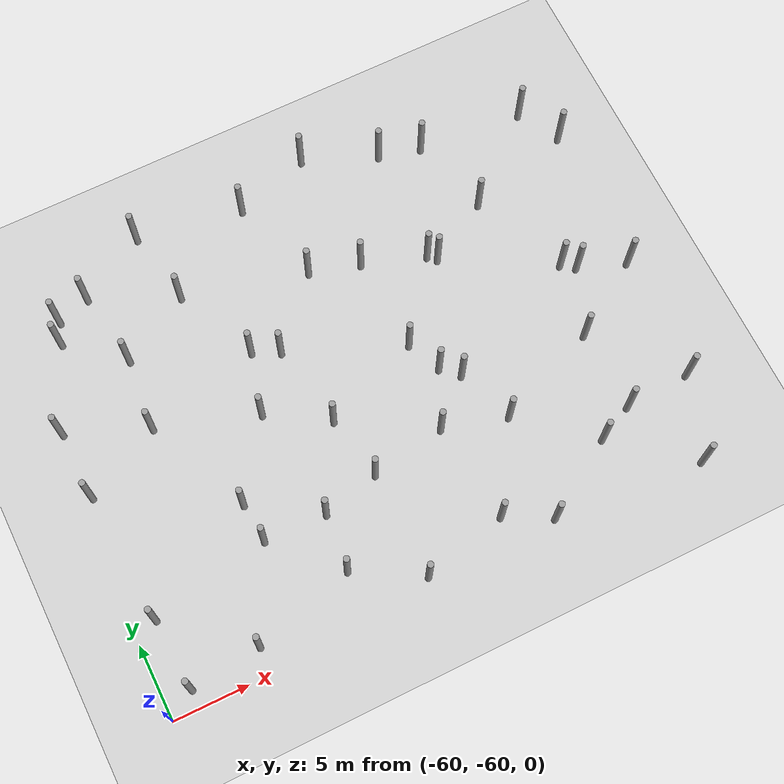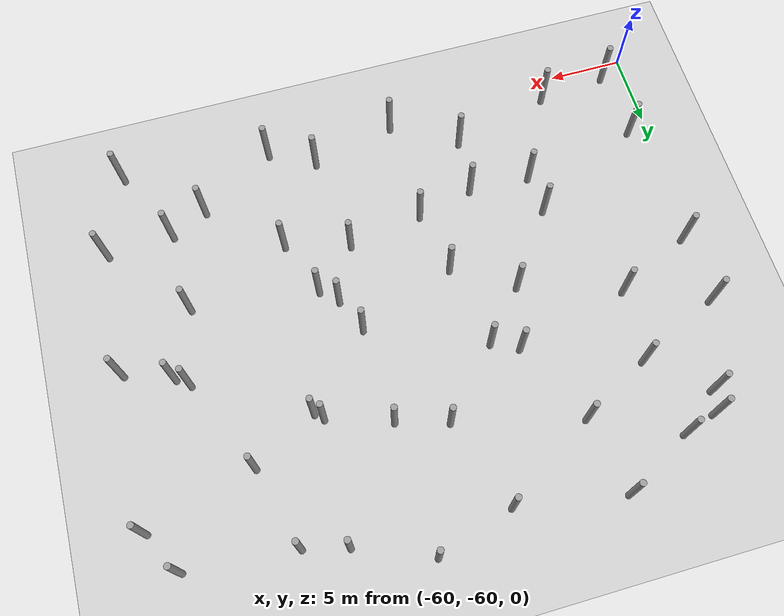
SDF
<sdf version="1.6">
 <world name="default">
  <model name="ground_plane">
   <static>1</static>
   <link name="link">
    <collision name="collision">
     <geometry><plane><normal>0 0 1</normal><size>200 200</size></plane></geometry>
     <surface><friction><ode><mu>100</mu><mu2>50</mu2></ode></friction></surface>
    </collision>
    <visual name="visual">
     <cast_shadows>0</cast_shadows>
     <geometry><plane><normal>0 0 1</normal><size>200 200</size></plane></geometry>
     <material>
      <script><uri>file://media/materials/scripts/gazebo.material</uri><name>Gazebo/Grey</name></script>
     </material>
    </visual>
   </link>
   <pose>0 100 0 0 0 0</pose>
  </model>
  <include>
   <name>tree_-58.2274148097_-58.8383424693</name>
   <uri>model://tree</uri>
   <pose>-58.2274148097 -58.8383424693 2 0 0 0</pose>
  </include>
  <include>
   <name>tree_-58.4916522315_-54.0885505528</name>
   <uri>model://tree</uri>
   <pose>-58.4916522315 -54.0885505528 2 0 0 0</pose>
  </include>
  <include>
   <name>tree_-58.9903051866_-45.344155304</name>
   <uri>model://tree</uri>
   <pose>-58.9903051866 -45.344155304 2 0 0 0</pose>
  </include>
  <include>
   <name>tree_-59.0742666468_-40.730722932</name>
   <uri>model://tree</uri>
   <pose>-59.0742666468 -40.730722932 2 0 0 0</pose>
  </include>
  <include>
   <name>tree_-56.8344243115_-35.0828755712</name>
   <uri>model://tree</uri>
   <pose>-56.8344243115 -35.0828755712 2 0 0 0</pose>
  </include>
  <include>
   <name>tree_-56.3498334585_-33.6391085534</name>
   <uri>model://tree</uri>
   <pose>-56.3498334585 -33.6391085534 2 0 0 0</pose>
  </include>
  <include>
   <name>tree_-53.5228804513_-58.3246953583</name>
   <uri>model://tree</uri>
   <pose>-53.5228804513 -58.3246953583 2 0 0 0</pose>
  </include>
  <include>
   <name>tree_-50.57534767_-52.5507168447</name>
   <uri>model://tree</uri>
   <pose>-50.57534767 -52.5507168447 2 0 0 0</pose>
  </include>
  <include>
   <name>tree_-50.7561509406_-49.8958192889</name>
   <uri>model://tree</uri>
   <pose>-50.7561509406 -49.8958192889 2 0 0 0</pose>
  </include>
  <include>
   <name>tree_-53.8439418874_-42.889889764</name>
   <uri>model://tree</uri>
   <pose>-53.8439418874 -42.889889764 2 0 0 0</pose>
  </include>
  <include>
   <name>tree_-53.3634690328_-38.0556329758</name>
   <uri>model://tree</uri>
   <pose>-53.3634690328 -38.0556329758 2 0 0 0</pose>
  </include>
  <include>
   <name>tree_-54.1499339201_-32.9399905183</name>
   <uri>model://tree</uri>
   <pose>-54.1499339201 -32.9399905183 2 0 0 0</pose>
  </include>
  <include>
   <name>tree_-46.8074518452_-56.4880099548</name>
   <uri>model://tree</uri>
   <pose>-46.8074518452 -56.4880099548 2 0 0 0</pose>
  </include>
  <include>
   <name>tree_-46.4274875964_-52.7013611165</name>
   <uri>model://tree</uri>
   <pose>-46.4274875964 -52.7013611165 2 0 0 0</pose>
  </include>
  <include>
   <name>tree_-47.2750811829_-45.0634503366</name>
   <uri>model://tree</uri>
   <pose>-47.2750811829 -45.0634503366 2 0 0 0</pose>
  </include>
  <include>
   <name>tree_-46.1404162311_-40.9708498844</name>
   <uri>model://tree</uri>
   <pose>-46.1404162311 -40.9708498844 2 0 0 0</pose>
  </include>
  <include>
   <name>tree_-48.6578779915_-35.4890592814</name>
   <uri>model://tree</uri>
   <pose>-48.6578779915 -35.4890592814 2 0 0 0</pose>
  </include>
  <include>
   <name>tree_-49.5763440504_-30.4244990846</name>
   <uri>model://tree</uri>
   <pose>-49.5763440504 -30.4244990846 2 0 0 0</pose>
  </include>
  <include>
   <name>tree_-42.5192222919_-58.9697346201</name>
   <uri>model://tree</uri>
   <pose>-42.5192222919 -58.9697346201 2 0 0 0</pose>
  </include>
  <include>
   <name>tree_-42.6050052407_-51.7518724159</name>
   <uri>model://tree</uri>
   <pose>-42.6050052407 -51.7518724159 2 0 0 0</pose>
  </include>
  <include>
   <name>tree_-43.40731106_-47.4590871816</name>
   <uri>model://tree</uri>
   <pose>-43.40731106 -47.4590871816 2 0 0 0</pose>
  </include>
  <include>
   <name>tree_-44.4191824964_-41.8117178599</name>
   <uri>model://tree</uri>
   <pose>-44.4191824964 -41.8117178599 2 0 0 0</pose>
  </include>
  <include>
   <name>tree_-40.4790457472_-37.5747672046</name>
   <uri>model://tree</uri>
   <pose>-40.4790457472 -37.5747672046 2 0 0 0</pose>
  </include>
  <include>
   <name>tree_-42.5171132408_-31.5933051882</name>
   <uri>model://tree</uri>
   <pose>-42.5171132408 -31.5933051882 2 0 0 0</pose>
  </include>
  <include>
   <name>tree_-36.843268844_-57.5795107952</name>
   <uri>model://tree</uri>
   <pose>-36.843268844 -57.5795107952 2 0 0 0</pose>
  </include>
  <include>
   <name>tree_-37.5912495792_-50.89687537</name>
   <uri>model://tree</uri>
   <pose>-37.5912495792 -50.89687537 2 0 0 0</pose>
  </include>
  <include>
   <name>tree_-35.8630590204_-47.2423326248</name>
   <uri>model://tree</uri>
   <pose>-35.8630590204 -47.2423326248 2 0 0 0</pose>
  </include>
  <include>
   <name>tree_-36.8512287185_-44.947728645</name>
   <uri>model://tree</uri>
   <pose>-36.8512287185 -44.947728645 2 0 0 0</pose>
  </include>
  <include>
   <name>tree_-37.1571956297_-38.5303834241</name>
   <uri>model://tree</uri>
   <pose>-37.1571956297 -38.5303834241 2 0 0 0</pose>
  </include>
  <include>
   <name>tree_-37.4518607695_-30.0179271985</name>
   <uri>model://tree</uri>
   <pose>-37.4518607695 -30.0179271985 2 0 0 0</pose>
  </include>
  <include>
   <name>tree_-33.8553586509_-59.1588226587</name>
   <uri>model://tree</uri>
   <pose>-33.8553586509 -59.1588226587 2 0 0 0</pose>
  </include>
  <include>
   <name>tree_-33.3539602723_-52.0556464401</name>
   <uri>model://tree</uri>
   <pose>-33.3539602723 -52.0556464401 2 0 0 0</pose>
  </include>
  <include>
   <name>tree_-34.7775390859_-48.2709189738</name>
   <uri>model://tree</uri>
   <pose>-34.7775390859 -48.2709189738 2 0 0 0</pose>
  </include>
  <include>
   <name>tree_-32.5070802288_-40.4171583221</name>
   <uri>model://tree</uri>
   <pose>-32.5070802288 -40.4171583221 2 0 0 0</pose>
  </include>
  <include>
   <name>tree_-33.0124407247_-39.9245789739</name>
   <uri>model://tree</uri>
   <pose>-33.0124407247 -39.9245789739 2 0 0 0</pose>
  </include>
  <include>
   <name>tree_-32.6390342798_-31.9668686404</name>
   <uri>model://tree</uri>
   <pose>-32.6390342798 -31.9668686404 2 0 0 0</pose>
  </include>
  <include>
   <name>tree_-28.7741074986_-55.9618486989</name>
   <uri>model://tree</uri>
   <pose>-28.7741074986 -55.9618486989 2 0 0 0</pose>
  </include>
  <include>
   <name>tree_-26.3272595765_-54.782769425</name>
   <uri>model://tree</uri>
   <pose>-26.3272595765 -54.782769425 2 0 0 0</pose>
  </include>
  <include>
   <name>tree_-26.4608206516_-49.3212357111</name>
   <uri>model://tree</uri>
   <pose>-26.4608206516 -49.3212357111 2 0 0 0</pose>
  </include>
  <include>
   <name>tree_-25.4851526211_-44.3026490503</name>
   <uri>model://tree</uri>
   <pose>-25.4851526211 -44.3026490503 2 0 0 0</pose>
  </include>
  <include>
   <name>tree_-28.2814894474_-38.0608082733</name>
   <uri>model://tree</uri>
   <pose>-28.2814894474 -38.0608082733 2 0 0 0</pose>
  </include>
  <include>
   <name>tree_-29.8436679056_-32.6822070983</name>
   <uri>model://tree</uri>
   <pose>-29.8436679056 -32.6822070983 2 0 0 0</pose>
  </include>
  <include>
   <name>tree_-23.891350666_-59.9793953705</name>
   <uri>model://tree</uri>
   <pose>-23.891350666 -59.9793953705 2 0 0 0</pose>
  </include>
  <include>
   <name>tree_-21.9069199302_-54.552157768</name>
   <uri>model://tree</uri>
   <pose>-21.9069199302 -54.552157768 2 0 0 0</pose>
  </include>
  <include>
   <name>tree_-21.4916299797_-46.0972505093</name>
   <uri>model://tree</uri>
   <pose>-21.4916299797 -46.0972505093 2 0 0 0</pose>
  </include>
  <include>
   <name>tree_-24.6336269507_-44.950029326</name>
   <uri>model://tree</uri>
   <pose>-24.6336269507 -44.950029326 2 0 0 0</pose>
  </include>
  <include>
   <name>tree_-21.1911895662_-36.0547437213</name>
   <uri>model://tree</uri>
   <pose>-21.1911895662 -36.0547437213 2 0 0 0</pose>
  </include>
  <include>
   <name>tree_-22.7732928419_-33.3154646151</name>
   <uri>model://tree</uri>
   <pose>-22.7732928419 -33.3154646151 2 0 0 0</pose>
  </include>
 </world>
</sdf>
